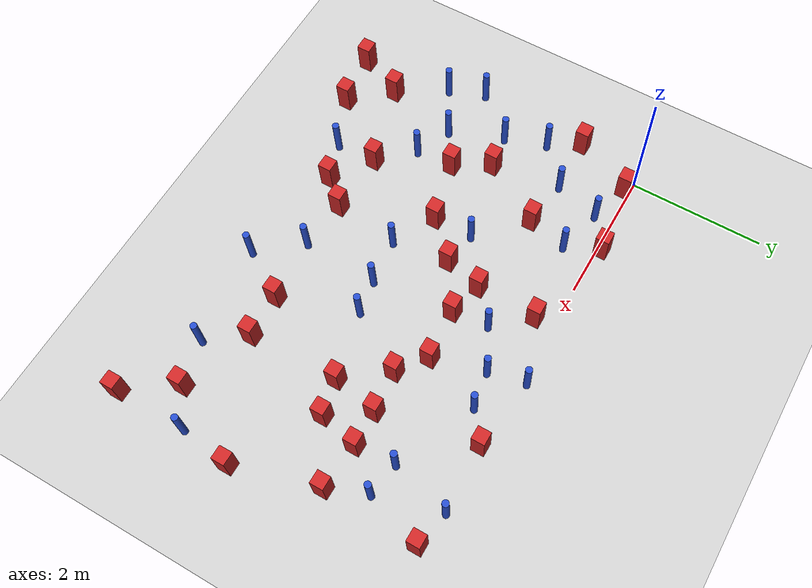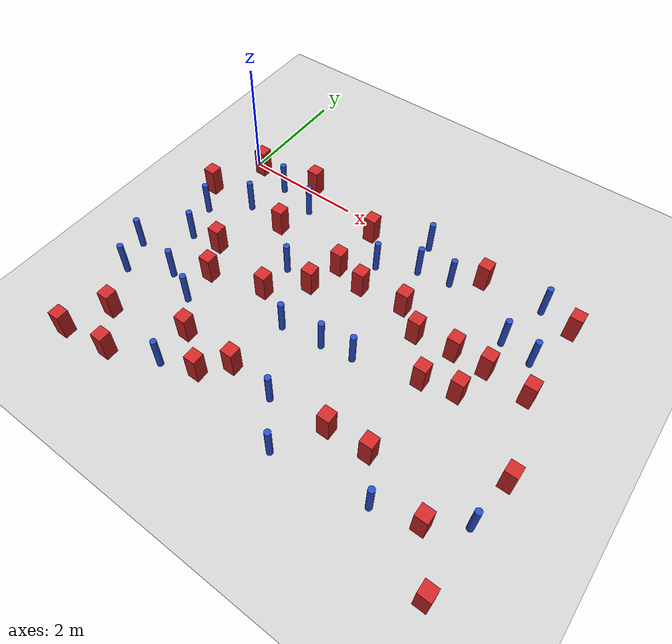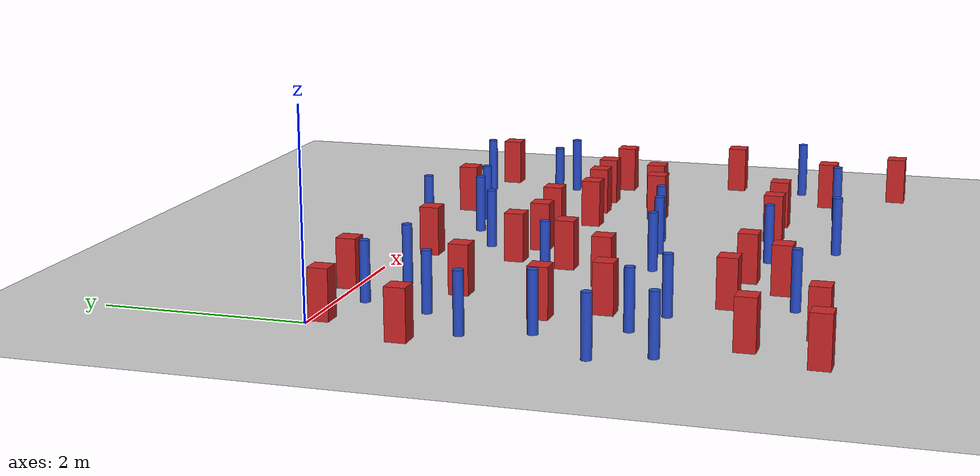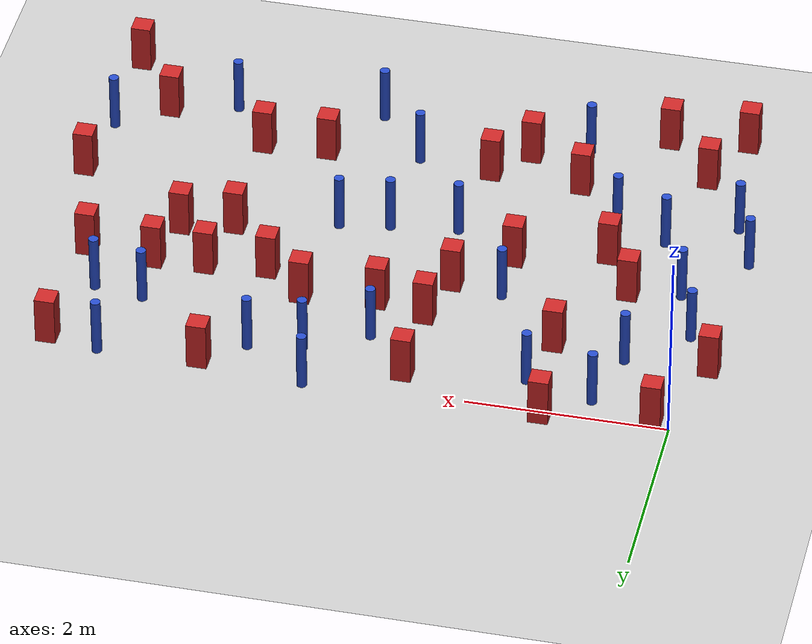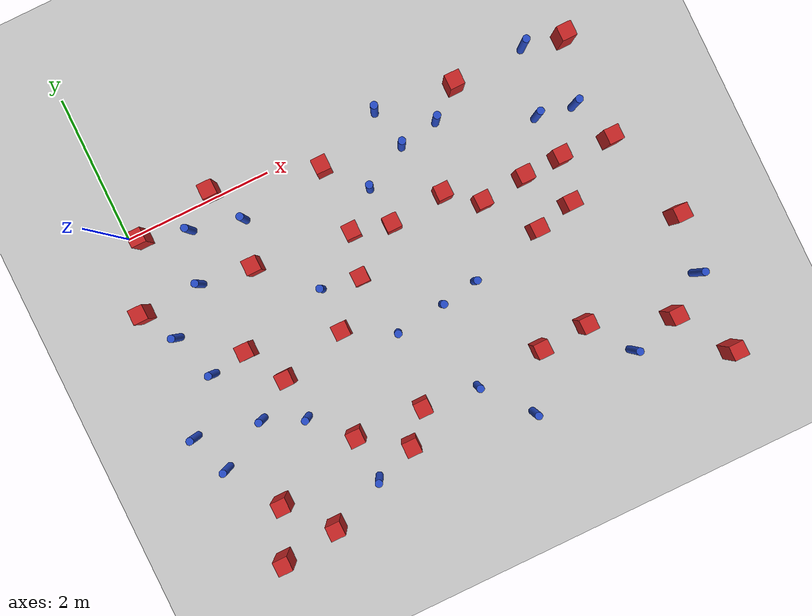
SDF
<sdf version="1.6">
 <world name="default">
  <model name="ground_plane">
   <static>1</static>
   <link name="link">
    <collision name="collision">
     <geometry><plane><normal>0 0 1</normal><size>100 100</size></plane></geometry>
     <surface><friction><ode><mu>100</mu><mu2>50</mu2></ode></friction></surface>
    </collision>
    <visual name="visual">
     <cast_shadows>0</cast_shadows>
     <geometry><plane><normal>0 0 1</normal><size>100 100</size></plane></geometry>
     <material>
      <ambient>1.0 1.0 1.0 1.0</ambient>
      <diffuse>0.8 0.8 0.8 1.0</diffuse>
      <specular>0.01 0.01 0.01 1.000000</specular>
     </material>
    </visual>
   </link>
  </model>
  <model name="NamedLocations">
   <static>true</static>
   <link name="DefaultStart"><pose>8.5 0 0 0 0 3.14</pose></link>
  </model>
  <model name="pole_obstacle4">
   <static>true</static>
   <pose>3.29963674855 -2.52704988164 7.38925637345e-09 -8.47170692798e-08 1.24976764939e-08 -1.74513093025e-07</pose>
   <link name="link">
    <pose>0 0 0.3 0 -0 0</pose>
    <inertial>
     <mass>1</mass>
     <inertia><ixx>0.145833</ixx><ixy>0</ixy><ixz>0</ixz><iyy>0.145833</iyy><iyz>0</iyz><izz>0.125</izz></inertia>
    </inertial>
    <collision name="collision">
     <geometry><cylinder><radius>0.05</radius><length>.6</length></cylinder></geometry>
    </collision>
    <visual name="visual">
     <geometry><cylinder><radius>0.05</radius><length>.6</length></cylinder></geometry>
     <material>
      <script><name>Gazebo/Blue</name><uri>file://media/materials/scripts/gazebo.material</uri></script>
     </material>
    </visual>
   </link>
  </model>
  <model name="square_post_obstacle7">
   <static>true</static>
   <pose>5.32515798996 -2.06593190637 1.91545236811e-07 -7.35059704564e-06 1.12565212e-07 2.39332434364e-05</pose>
   <link name="link">
    <pose>0 0 0.25 0 -0 0</pose>
    <inertial>
     <mass>100</mass>
     <inertia>
      <ixx>0.166667</ixx>
      <ixy>0</ixy>
      <ixz>0</ixz>
      <iyy>0.166667</iyy>
      <iyz>0</iyz>
      <izz>0.166667</izz>
     </inertia>
    </inertial>
    <collision name="collision"><geometry><box><size>.2 .2 .5</size></box></geometry></collision>
    <visual name="visual">
     <geometry><box><size>.2 .2 .5</size></box></geometry>
     <material>
      <script><name>Gazebo/Red</name><uri>file://media/materials/scripts/gazebo.material</uri></script>
     </material>
    </visual>
   </link>
  </model>
  <model name="square_post_obstacle9">
   <static>true</static>
   <pose>3.91278412913 -1.24302501316 1.91545236811e-07 -7.35059704564e-06 1.12565212e-07 2.39332434364e-05</pose>
   <link name="link">
    <pose>0 0 0.25 0 -0 0</pose>
    <inertial>
     <mass>100</mass>
     <inertia>
      <ixx>0.166667</ixx>
      <ixy>0</ixy>
      <ixz>0</ixz>
      <iyy>0.166667</iyy>
      <iyz>0</iyz>
      <izz>0.166667</izz>
     </inertia>
    </inertial>
    <collision name="collision"><geometry><box><size>.2 .2 .5</size></box></geometry></collision>
    <visual name="visual">
     <geometry><box><size>.2 .2 .5</size></box></geometry>
     <material>
      <script><name>Gazebo/Red</name><uri>file://media/materials/scripts/gazebo.material</uri></script>
     </material>
    </visual>
   </link>
  </model>
  <model name="square_post_obstacle11">
   <static>true</static>
   <pose>1.56655398483 -3.56114634323 1.91545236811e-07 -7.35059704564e-06 1.12565212e-07 2.39332434364e-05</pose>
   <link name="link">
    <pose>0 0 0.25 0 -0 0</pose>
    <inertial>
     <mass>100</mass>
     <inertia>
      <ixx>0.166667</ixx>
      <ixy>0</ixy>
      <ixz>0</ixz>
      <iyy>0.166667</iyy>
      <iyz>0</iyz>
      <izz>0.166667</izz>
     </inertia>
    </inertial>
    <collision name="collision"><geometry><box><size>.2 .2 .5</size></box></geometry></collision>
    <visual name="visual">
     <geometry><box><size>.2 .2 .5</size></box></geometry>
     <material>
      <script><name>Gazebo/Red</name><uri>file://media/materials/scripts/gazebo.material</uri></script>
     </material>
    </visual>
   </link>
  </model>
  <model name="square_post_obstacle12">
   <static>true</static>
   <pose>0.781799811374 -1.9727818271 1.91545236811e-07 -7.35059704564e-06 1.12565212e-07 2.39332434364e-05</pose>
   <link name="link">
    <pose>0 0 0.25 0 -0 0</pose>
    <inertial>
     <mass>100</mass>
     <inertia>
      <ixx>0.166667</ixx>
      <ixy>0</ixy>
      <ixz>0</ixz>
      <iyy>0.166667</iyy>
      <iyz>0</iyz>
      <izz>0.166667</izz>
     </inertia>
    </inertial>
    <collision name="collision"><geometry><box><size>.2 .2 .5</size></box></geometry></collision>
    <visual name="visual">
     <geometry><box><size>.2 .2 .5</size></box></geometry>
     <material>
      <script><name>Gazebo/Red</name><uri>file://media/materials/scripts/gazebo.material</uri></script>
     </material>
    </visual>
   </link>
  </model>
  <model name="square_post_obstacle14">
   <static>true</static>
   <pose>6.14993961561 -1.53402861949 1.91545236811e-07 -7.35059704564e-06 1.12565212e-07 2.39332434364e-05</pose>
   <link name="link">
    <pose>0 0 0.25 0 -0 0</pose>
    <inertial>
     <mass>100</mass>
     <inertia>
      <ixx>0.166667</ixx>
      <ixy>0</ixy>
      <ixz>0</ixz>
      <iyy>0.166667</iyy>
      <iyz>0</iyz>
      <izz>0.166667</izz>
     </inertia>
    </inertial>
    <collision name="collision"><geometry><box><size>.2 .2 .5</size></box></geometry></collision>
    <visual name="visual">
     <geometry><box><size>.2 .2 .5</size></box></geometry>
     <material>
      <script><name>Gazebo/Red</name><uri>file://media/materials/scripts/gazebo.material</uri></script>
     </material>
    </visual>
   </link>
  </model>
  <model name="square_post_obstacle20">
   <static>true</static>
   <pose>6.37773901293 -4.66234504108 1.91545236811e-07 -7.35059704564e-06 1.12565212e-07 2.39332434364e-05</pose>
   <link name="link">
    <pose>0 0 0.25 0 -0 0</pose>
    <inertial>
     <mass>100</mass>
     <inertia>
      <ixx>0.166667</ixx>
      <ixy>0</ixy>
      <ixz>0</ixz>
      <iyy>0.166667</iyy>
      <iyz>0</iyz>
      <izz>0.166667</izz>
     </inertia>
    </inertial>
    <collision name="collision"><geometry><box><size>.2 .2 .5</size></box></geometry></collision>
    <visual name="visual">
     <geometry><box><size>.2 .2 .5</size></box></geometry>
     <material>
      <script><name>Gazebo/Red</name><uri>file://media/materials/scripts/gazebo.material</uri></script>
     </material>
    </visual>
   </link>
  </model>
  <model name="square_post_obstacle30">
   <static>true</static>
   <pose>-0.212097342811 -0.975121167639 1.91545236811e-07 -7.35059704564e-06 1.12565212e-07 2.39332434364e-05</pose>
   <link name="link">
    <pose>0 0 0.25 0 -0 0</pose>
    <inertial>
     <mass>100</mass>
     <inertia>
      <ixx>0.166667</ixx>
      <ixy>0</ixy>
      <ixz>0</ixz>
      <iyy>0.166667</iyy>
      <iyz>0</iyz>
      <izz>0.166667</izz>
     </inertia>
    </inertial>
    <collision name="collision"><geometry><box><size>.2 .2 .5</size></box></geometry></collision>
    <visual name="visual">
     <geometry><box><size>.2 .2 .5</size></box></geometry>
     <material>
      <script><name>Gazebo/Red</name><uri>file://media/materials/scripts/gazebo.material</uri></script>
     </material>
    </visual>
   </link>
  </model>
  <model name="pole_obstacle23">
   <static>true</static>
   <pose>5.42729002792 -0.882214914717 7.38925637345e-09 -8.47170692799e-08 1.24976765038e-08 -1.74513093018e-07</pose>
   <link name="link">
    <pose>0 0 0.3 0 -0 0</pose>
    <inertial>
     <mass>1</mass>
     <inertia><ixx>0.145833</ixx><ixy>0</ixy><ixz>0</ixz><iyy>0.145833</iyy><iyz>0</iyz><izz>0.125</izz></inertia>
    </inertial>
    <collision name="collision">
     <geometry><cylinder><radius>0.05</radius><length>.6</length></cylinder></geometry>
    </collision>
    <visual name="visual">
     <geometry><cylinder><radius>0.05</radius><length>.6</length></cylinder></geometry>
     <material>
      <script><name>Gazebo/Blue</name><uri>file://media/materials/scripts/gazebo.material</uri></script>
     </material>
    </visual>
   </link>
  </model>
  <model name="pole_obstacle26">
   <static>true</static>
   <pose>3.71251240073 -0.465332665055 7.38925637345e-09 -8.471706928e-08 1.2497676509e-08 -1.74513093016e-07</pose>
   <link name="link">
    <pose>0 0 0.3 0 -0 0</pose>
    <inertial>
     <mass>1</mass>
     <inertia><ixx>0.145833</ixx><ixy>0</ixy><ixz>0</ixz><iyy>0.145833</iyy><iyz>0</iyz><izz>0.125</izz></inertia>
    </inertial>
    <collision name="collision">
     <geometry><cylinder><radius>0.05</radius><length>.6</length></cylinder></geometry>
    </collision>
    <visual name="visual">
     <geometry><cylinder><radius>0.05</radius><length>.6</length></cylinder></geometry>
     <material>
      <script><name>Gazebo/Blue</name><uri>file://media/materials/scripts/gazebo.material</uri></script>
     </material>
    </visual>
   </link>
  </model>
  <model name="square_post_obstacle37">
   <static>true</static>
   <pose>2.67386604057 -0.272644158331 1.91545236811e-07 -7.35059704564e-06 1.12565212e-07 2.39332434364e-05</pose>
   <link name="link">
    <pose>0 0 0.25 0 -0 0</pose>
    <inertial>
     <mass>100</mass>
     <inertia>
      <ixx>0.166667</ixx>
      <ixy>0</ixy>
      <ixz>0</ixz>
      <iyy>0.166667</iyy>
      <iyz>0</iyz>
      <izz>0.166667</izz>
     </inertia>
    </inertial>
    <collision name="collision"><geometry><box><size>.2 .2 .5</size></box></geometry></collision>
    <visual name="visual">
     <geometry><box><size>.2 .2 .5</size></box></geometry>
     <material>
      <script><name>Gazebo/Red</name><uri>file://media/materials/scripts/gazebo.material</uri></script>
     </material>
    </visual>
   </link>
  </model>
  <model name="pole_obstacle39">
   <static>true</static>
   <pose>3.24939669819 -3.66984766308 7.38925637345e-09 -8.47170692798e-08 1.24976764939e-08 -1.74513093025e-07</pose>
   <link name="link">
    <pose>0 0 0.3 0 -0 0</pose>
    <inertial>
     <mass>1</mass>
     <inertia><ixx>0.145833</ixx><ixy>0</ixy><ixz>0</ixz><iyy>0.145833</iyy><iyz>0</iyz><izz>0.125</izz></inertia>
    </inertial>
    <collision name="collision">
     <geometry><cylinder><radius>0.05</radius><length>.6</length></cylinder></geometry>
    </collision>
    <visual name="visual">
     <geometry><cylinder><radius>0.05</radius><length>.6</length></cylinder></geometry>
     <material>
      <script><name>Gazebo/Blue</name><uri>file://media/materials/scripts/gazebo.material</uri></script>
     </material>
    </visual>
   </link>
  </model>
  <model name="pole_obstacle41">
   <static>true</static>
   <pose>3.59054302921 0.0832238258351 7.38925637345e-09 -8.47170692794e-08 1.24976764492e-08 -1.74513093038e-07</pose>
   <link name="link">
    <pose>0 0 0.3 0 -0 0</pose>
    <inertial>
     <mass>1</mass>
     <inertia><ixx>0.145833</ixx><ixy>0</ixy><ixz>0</ixz><iyy>0.145833</iyy><iyz>0</iyz><izz>0.125</izz></inertia>
    </inertial>
    <collision name="collision">
     <geometry><cylinder><radius>0.05</radius><length>.6</length></cylinder></geometry>
    </collision>
    <visual name="visual">
     <geometry><cylinder><radius>0.05</radius><length>.6</length></cylinder></geometry>
     <material>
      <script><name>Gazebo/Blue</name><uri>file://media/materials/scripts/gazebo.material</uri></script>
     </material>
    </visual>
   </link>
  </model>
  <model name="square_post_obstacle45">
   <static>true</static>
   <pose>5.46341938206 -1.47776737375 1.91545236811e-07 -7.35059704564e-06 1.12565212e-07 2.39332434364e-05</pose>
   <link name="link">
    <pose>0 0 0.25 0 -0 0</pose>
    <inertial>
     <mass>100</mass>
     <inertia>
      <ixx>0.166667</ixx>
      <ixy>0</ixy>
      <ixz>0</ixz>
      <iyy>0.166667</iyy>
      <iyz>0</iyz>
      <izz>0.166667</izz>
     </inertia>
    </inertial>
    <collision name="collision"><geometry><box><size>.2 .2 .5</size></box></geometry></collision>
    <visual name="visual">
     <geometry><box><size>.2 .2 .5</size></box></geometry>
     <material>
      <script><name>Gazebo/Red</name><uri>file://media/materials/scripts/gazebo.material</uri></script>
     </material>
    </visual>
   </link>
  </model>
  <model name="square_post_obstacle48">
   <static>true</static>
   <pose>1.2500412774 0.0679227495436 1.91545236811e-07 -7.35059704564e-06 1.12565212e-07 2.39332434364e-05</pose>
   <link name="link">
    <pose>0 0 0.25 0 -0 0</pose>
    <inertial>
     <mass>100</mass>
     <inertia>
      <ixx>0.166667</ixx>
      <ixy>0</ixy>
      <ixz>0</ixz>
      <iyy>0.166667</iyy>
      <iyz>0</iyz>
      <izz>0.166667</izz>
     </inertia>
    </inertial>
    <collision name="collision"><geometry><box><size>.2 .2 .5</size></box></geometry></collision>
    <visual name="visual">
     <geometry><box><size>.2 .2 .5</size></box></geometry>
     <material>
      <script><name>Gazebo/Red</name><uri>file://media/materials/scripts/gazebo.material</uri></script>
     </material>
    </visual>
   </link>
  </model>
  <model name="square_post_obstacle52">
   <static>true</static>
   <pose>4.64862827451 -0.0467366856954 1.91545236811e-07 -7.35059704564e-06 1.12565212e-07 2.39332434364e-05</pose>
   <link name="link">
    <pose>0 0 0.25 0 -0 0</pose>
    <inertial>
     <mass>100</mass>
     <inertia>
      <ixx>0.166667</ixx>
      <ixy>0</ixy>
      <ixz>0</ixz>
      <iyy>0.166667</iyy>
      <iyz>0</iyz>
      <izz>0.166667</izz>
     </inertia>
    </inertial>
    <collision name="collision"><geometry><box><size>.2 .2 .5</size></box></geometry></collision>
    <visual name="visual">
     <geometry><box><size>.2 .2 .5</size></box></geometry>
     <material>
      <script><name>Gazebo/Red</name><uri>file://media/materials/scripts/gazebo.material</uri></script>
     </material>
    </visual>
   </link>
  </model>
  <model name="square_post_obstacle59">
   <static>true</static>
   <pose>6.49960553927 -2.79618050929 1.91545236811e-07 -7.35059704564e-06 1.12565212e-07 2.39332434364e-05</pose>
   <link name="link">
    <pose>0 0 0.25 0 -0 0</pose>
    <inertial>
     <mass>100</mass>
     <inertia>
      <ixx>0.166667</ixx>
      <ixy>0</ixy>
      <ixz>0</ixz>
      <iyy>0.166667</iyy>
      <iyz>0</iyz>
      <izz>0.166667</izz>
     </inertia>
    </inertial>
    <collision name="collision"><geometry><box><size>.2 .2 .5</size></box></geometry></collision>
    <visual name="visual">
     <geometry><box><size>.2 .2 .5</size></box></geometry>
     <material>
      <script><name>Gazebo/Red</name><uri>file://media/materials/scripts/gazebo.material</uri></script>
     </material>
    </visual>
   </link>
  </model>
  <model name="pole_obstacle62">
   <static>true</static>
   <pose>5.23737648423 -4.11610737897 7.38925637345e-09 -8.47170692796e-08 1.24976764786e-08 -1.74513093032e-07</pose>
   <link name="link">
    <pose>0 0 0.3 0 -0 0</pose>
    <inertial>
     <mass>1</mass>
     <inertia><ixx>0.145833</ixx><ixy>0</ixy><ixz>0</ixz><iyy>0.145833</iyy><iyz>0</iyz><izz>0.125</izz></inertia>
    </inertial>
    <collision name="collision">
     <geometry><cylinder><radius>0.05</radius><length>.6</length></cylinder></geometry>
    </collision>
    <visual name="visual">
     <geometry><cylinder><radius>0.05</radius><length>.6</length></cylinder></geometry>
     <material>
      <script><name>Gazebo/Blue</name><uri>file://media/materials/scripts/gazebo.material</uri></script>
     </material>
    </visual>
   </link>
  </model>
  <model name="pole_obstacle65">
   <static>true</static>
   <pose>3.80226814873 -2.44054660749 7.38925637345e-09 -8.47170692798e-08 1.24976764939e-08 -1.74513093025e-07</pose>
   <link name="link">
    <pose>0 0 0.3 0 -0 0</pose>
    <inertial>
     <mass>1</mass>
     <inertia><ixx>0.145833</ixx><ixy>0</ixy><ixz>0</ixz><iyy>0.145833</iyy><iyz>0</iyz><izz>0.125</izz></inertia>
    </inertial>
    <collision name="collision">
     <geometry><cylinder><radius>0.05</radius><length>.6</length></cylinder></geometry>
    </collision>
    <visual name="visual">
     <geometry><cylinder><radius>0.05</radius><length>.6</length></cylinder></geometry>
     <material>
      <script><name>Gazebo/Blue</name><uri>file://media/materials/scripts/gazebo.material</uri></script>
     </material>
    </visual>
   </link>
  </model>
  <model name="square_post_obstacle74">
   <static>true</static>
   <pose>1.08078639596 -2.50780001364 1.91545236811e-07 -7.35059704564e-06 1.12565212e-07 2.39332434364e-05</pose>
   <link name="link">
    <pose>0 0 0.25 0 -0 0</pose>
    <inertial>
     <mass>100</mass>
     <inertia>
      <ixx>0.166667</ixx>
      <ixy>0</ixy>
      <ixz>0</ixz>
      <iyy>0.166667</iyy>
      <iyz>0</iyz>
      <izz>0.166667</izz>
     </inertia>
    </inertial>
    <collision name="collision"><geometry><box><size>.2 .2 .5</size></box></geometry></collision>
    <visual name="visual">
     <geometry><box><size>.2 .2 .5</size></box></geometry>
     <material>
      <script><name>Gazebo/Red</name><uri>file://media/materials/scripts/gazebo.material</uri></script>
     </material>
    </visual>
   </link>
  </model>
  <model name="pole_obstacle69">
   <static>true</static>
   <pose>0.618697867521 -0.941992755895 7.38925637345e-09 -8.47170692799e-08 1.24976765008e-08 -1.7451309302e-07</pose>
   <link name="link">
    <pose>0 0 0.3 0 -0 0</pose>
    <inertial>
     <mass>1</mass>
     <inertia><ixx>0.145833</ixx><ixy>0</ixy><ixz>0</ixz><iyy>0.145833</iyy><iyz>0</iyz><izz>0.125</izz></inertia>
    </inertial>
    <collision name="collision">
     <geometry><cylinder><radius>0.05</radius><length>.6</length></cylinder></geometry>
    </collision>
    <visual name="visual">
     <geometry><cylinder><radius>0.05</radius><length>.6</length></cylinder></geometry>
     <material>
      <script><name>Gazebo/Blue</name><uri>file://media/materials/scripts/gazebo.material</uri></script>
     </material>
    </visual>
   </link>
  </model>
  <model name="pole_obstacle70">
   <static>true</static>
   <pose>0.579045994382 -2.84928705794 7.38925637345e-09 -8.47170692799e-08 1.2497676509e-08 -1.74513093016e-07</pose>
   <link name="link">
    <pose>0 0 0.3 0 -0 0</pose>
    <inertial>
     <mass>1</mass>
     <inertia><ixx>0.145833</ixx><ixy>0</ixy><ixz>0</ixz><iyy>0.145833</iyy><iyz>0</iyz><izz>0.125</izz></inertia>
    </inertial>
    <collision name="collision">
     <geometry><cylinder><radius>0.05</radius><length>.6</length></cylinder></geometry>
    </collision>
    <visual name="visual">
     <geometry><cylinder><radius>0.05</radius><length>.6</length></cylinder></geometry>
     <material>
      <script><name>Gazebo/Blue</name><uri>file://media/materials/scripts/gazebo.material</uri></script>
     </material>
    </visual>
   </link>
  </model>
  <model name="square_post_obstacle82">
   <static>true</static>
   <pose>0.343470365205 -3.9345903441 1.91545236811e-07 -7.35059704564e-06 1.12565212e-07 2.39332434364e-05</pose>
   <link name="link">
    <pose>0 0 0.25 0 -0 0</pose>
    <inertial>
     <mass>100</mass>
     <inertia>
      <ixx>0.166667</ixx>
      <ixy>0</ixy>
      <ixz>0</ixz>
      <iyy>0.166667</iyy>
      <iyz>0</iyz>
      <izz>0.166667</izz>
     </inertia>
    </inertial>
    <collision name="collision"><geometry><box><size>.2 .2 .5</size></box></geometry></collision>
    <visual name="visual">
     <geometry><box><size>.2 .2 .5</size></box></geometry>
     <material>
      <script><name>Gazebo/Red</name><uri>file://media/materials/scripts/gazebo.material</uri></script>
     </material>
    </visual>
   </link>
  </model>
  <model name="pole_obstacle100">
   <static>true</static>
   <pose>5.65591001705 0.00275264642492 7.38925637345e-09 -8.471706928e-08 1.24976765152e-08 -1.74513093013e-07</pose>
   <link name="link">
    <pose>0 0 0.3 0 -0 0</pose>
    <inertial>
     <mass>1</mass>
     <inertia><ixx>0.145833</ixx><ixy>0</ixy><ixz>0</ixz><iyy>0.145833</iyy><iyz>0</iyz><izz>0.125</izz></inertia>
    </inertial>
    <collision name="collision">
     <geometry><cylinder><radius>0.05</radius><length>.6</length></cylinder></geometry>
    </collision>
    <visual name="visual">
     <geometry><cylinder><radius>0.05</radius><length>.6</length></cylinder></geometry>
     <material>
      <script><name>Gazebo/Blue</name><uri>file://media/materials/scripts/gazebo.material</uri></script>
     </material>
    </visual>
   </link>
  </model>
  <model name="square_post_obstacle94">
   <static>true</static>
   <pose>4.83288081223 -3.54831911603 1.91545236811e-07 -7.35059704564e-06 1.12565212e-07 2.39332434364e-05</pose>
   <link name="link">
    <pose>0 0 0.25 0 -0 0</pose>
    <inertial>
     <mass>100</mass>
     <inertia>
      <ixx>0.166667</ixx>
      <ixy>0</ixy>
      <ixz>0</ixz>
      <iyy>0.166667</iyy>
      <iyz>0</iyz>
      <izz>0.166667</izz>
     </inertia>
    </inertial>
    <collision name="collision"><geometry><box><size>.2 .2 .5</size></box></geometry></collision>
    <visual name="visual">
     <geometry><box><size>.2 .2 .5</size></box></geometry>
     <material>
      <script><name>Gazebo/Red</name><uri>file://media/materials/scripts/gazebo.material</uri></script>
     </material>
    </visual>
   </link>
  </model>
  <model name="square_post_obstacle95">
   <static>true</static>
   <pose>6.17915060562 -0.108611815512 1.91545236811e-07 -7.35059704564e-06 1.12565212e-07 2.39332434364e-05</pose>
   <link name="link">
    <pose>0 0 0.25 0 -0 0</pose>
    <inertial>
     <mass>100</mass>
     <inertia>
      <ixx>0.166667</ixx>
      <ixy>0</ixy>
      <ixz>0</ixz>
      <iyy>0.166667</iyy>
      <iyz>0</iyz>
      <izz>0.166667</izz>
     </inertia>
    </inertial>
    <collision name="collision"><geometry><box><size>.2 .2 .5</size></box></geometry></collision>
    <visual name="visual">
     <geometry><box><size>.2 .2 .5</size></box></geometry>
     <material>
      <script><name>Gazebo/Red</name><uri>file://media/materials/scripts/gazebo.material</uri></script>
     </material>
    </visual>
   </link>
  </model>
  <model name="pole_obstacle113">
   <static>true</static>
   <pose>5.92642517865 -0.958715913393 7.38925637345e-09 -8.47170692799e-08 1.24976765054e-08 -1.74513093018e-07</pose>
   <link name="link">
    <pose>0 0 0.3 0 -0 0</pose>
    <inertial>
     <mass>1</mass>
     <inertia><ixx>0.145833</ixx><ixy>0</ixy><ixz>0</ixz><iyy>0.145833</iyy><iyz>0</iyz><izz>0.125</izz></inertia>
    </inertial>
    <collision name="collision">
     <geometry><cylinder><radius>0.05</radius><length>.6</length></cylinder></geometry>
    </collision>
    <visual name="visual">
     <geometry><cylinder><radius>0.05</radius><length>.6</length></cylinder></geometry>
     <material>
      <script><name>Gazebo/Blue</name><uri>file://media/materials/scripts/gazebo.material</uri></script>
     </material>
    </visual>
   </link>
  </model>
  <model name="square_post_obstacle104">
   <static>true</static>
   <pose>0.185371386443 -0.0892287103175 1.91545236811e-07 -7.35059704564e-06 1.12565212e-07 2.39332434364e-05</pose>
   <link name="link">
    <pose>0 0 0.25 0 -0 0</pose>
    <inertial>
     <mass>100</mass>
     <inertia>
      <ixx>0.166667</ixx>
      <ixy>0</ixy>
      <ixz>0</ixz>
      <iyy>0.166667</iyy>
      <iyz>0</iyz>
      <izz>0.166667</izz>
     </inertia>
    </inertial>
    <collision name="collision"><geometry><box><size>.2 .2 .5</size></box></geometry></collision>
    <visual name="visual">
     <geometry><box><size>.2 .2 .5</size></box></geometry>
     <material>
      <script><name>Gazebo/Red</name><uri>file://media/materials/scripts/gazebo.material</uri></script>
     </material>
    </visual>
   </link>
  </model>
  <model name="square_post_obstacle107">
   <static>true</static>
   <pose>0.0484123641351 -4.61002444014 1.91545236811e-07 -7.35059704564e-06 1.12565212e-07 2.39332434364e-05</pose>
   <link name="link">
    <pose>0 0 0.25 0 -0 0</pose>
    <inertial>
     <mass>100</mass>
     <inertia>
      <ixx>0.166667</ixx>
      <ixy>0</ixy>
      <ixz>0</ixz>
      <iyy>0.166667</iyy>
      <iyz>0</iyz>
      <izz>0.166667</izz>
     </inertia>
    </inertial>
    <collision name="collision"><geometry><box><size>.2 .2 .5</size></box></geometry></collision>
    <visual name="visual">
     <geometry><box><size>.2 .2 .5</size></box></geometry>
     <material>
      <script><name>Gazebo/Red</name><uri>file://media/materials/scripts/gazebo.material</uri></script>
     </material>
    </visual>
   </link>
  </model>
  <model name="pole_obstacle121">
   <static>true</static>
   <pose>4.24382040964 -0.370732630138 7.38925637345e-09 -8.47170692798e-08 1.24976765003e-08 -1.7451309302e-07</pose>
   <link name="link">
    <pose>0 0 0.3 0 -0 0</pose>
    <inertial>
     <mass>1</mass>
     <inertia><ixx>0.145833</ixx><ixy>0</ixy><ixz>0</ixz><iyy>0.145833</iyy><iyz>0</iyz><izz>0.125</izz></inertia>
    </inertial>
    <collision name="collision">
     <geometry><cylinder><radius>0.05</radius><length>.6</length></cylinder></geometry>
    </collision>
    <visual name="visual">
     <geometry><cylinder><radius>0.05</radius><length>.6</length></cylinder></geometry>
     <material>
      <script><name>Gazebo/Blue</name><uri>file://media/materials/scripts/gazebo.material</uri></script>
     </material>
    </visual>
   </link>
  </model>
  <model name="pole_obstacle124">
   <static>true</static>
   <pose>1.48582779091 -0.436796677172 7.38925637345e-09 -8.47170692799e-08 1.24976765065e-08 -1.74513093017e-07</pose>
   <link name="link">
    <pose>0 0 0.3 0 -0 0</pose>
    <inertial>
     <mass>1</mass>
     <inertia><ixx>0.145833</ixx><ixy>0</ixy><ixz>0</ixz><iyy>0.145833</iyy><iyz>0</iyz><izz>0.125</izz></inertia>
    </inertial>
    <collision name="collision">
     <geometry><cylinder><radius>0.05</radius><length>.6</length></cylinder></geometry>
    </collision>
    <visual name="visual">
     <geometry><cylinder><radius>0.05</radius><length>.6</length></cylinder></geometry>
     <material>
      <script><name>Gazebo/Blue</name><uri>file://media/materials/scripts/gazebo.material</uri></script>
     </material>
    </visual>
   </link>
  </model>
  <model name="pole_obstacle128">
   <static>true</static>
   <pose>0.0552838956196 -1.43466349698 7.38925637345e-09 -8.47170692798e-08 1.24976765001e-08 -1.74513093021e-07</pose>
   <link name="link">
    <pose>0 0 0.3 0 -0 0</pose>
    <inertial>
     <mass>1</mass>
     <inertia><ixx>0.145833</ixx><ixy>0</ixy><ixz>0</ixz><iyy>0.145833</iyy><iyz>0</iyz><izz>0.125</izz></inertia>
    </inertial>
    <collision name="collision">
     <geometry><cylinder><radius>0.05</radius><length>.6</length></cylinder></geometry>
    </collision>
    <visual name="visual">
     <geometry><cylinder><radius>0.05</radius><length>.6</length></cylinder></geometry>
     <material>
      <script><name>Gazebo/Blue</name><uri>file://media/materials/scripts/gazebo.material</uri></script>
     </material>
    </visual>
   </link>
  </model>
  <model name="pole_obstacle134">
   <static>true</static>
   <pose>3.10687038423 -0.780850217126 7.38925637345e-09 -8.471706928e-08 1.24976765177e-08 -1.74513093012e-07</pose>
   <link name="link">
    <pose>0 0 0.3 0 -0 0</pose>
    <inertial>
     <mass>1</mass>
     <inertia><ixx>0.145833</ixx><ixy>0</ixy><ixz>0</ixz><iyy>0.145833</iyy><iyz>0</iyz><izz>0.125</izz></inertia>
    </inertial>
    <collision name="collision">
     <geometry><cylinder><radius>0.05</radius><length>.6</length></cylinder></geometry>
    </collision>
    <visual name="visual">
     <geometry><cylinder><radius>0.05</radius><length>.6</length></cylinder></geometry>
     <material>
      <script><name>Gazebo/Blue</name><uri>file://media/materials/scripts/gazebo.material</uri></script>
     </material>
    </visual>
   </link>
  </model>
  <model name="square_post_obstacle118">
   <static>true</static>
   <pose>2.65506309591 -1.18407969353 1.91545236811e-07 -7.35059704564e-06 1.12565212e-07 2.39332434364e-05</pose>
   <link name="link">
    <pose>0 0 0.25 0 -0 0</pose>
    <inertial>
     <mass>100</mass>
     <inertia>
      <ixx>0.166667</ixx>
      <ixy>0</ixy>
      <ixz>0</ixz>
      <iyy>0.166667</iyy>
      <iyz>0</iyz>
      <izz>0.166667</izz>
     </inertia>
    </inertial>
    <collision name="collision"><geometry><box><size>.2 .2 .5</size></box></geometry></collision>
    <visual name="visual">
     <geometry><box><size>.2 .2 .5</size></box></geometry>
     <material>
      <script><name>Gazebo/Red</name><uri>file://media/materials/scripts/gazebo.material</uri></script>
     </material>
    </visual>
   </link>
  </model>
  <model name="pole_obstacle138">
   <static>true</static>
   <pose>-0.0952575684594 -3.22354801672 7.38925637345e-09 -8.471706928e-08 1.24976765098e-08 -1.74513093016e-07</pose>
   <link name="link">
    <pose>0 0 0.3 0 -0 0</pose>
    <inertial>
     <mass>1</mass>
     <inertia><ixx>0.145833</ixx><ixy>0</ixy><ixz>0</ixz><iyy>0.145833</iyy><iyz>0</iyz><izz>0.125</izz></inertia>
    </inertial>
    <collision name="collision">
     <geometry><cylinder><radius>0.05</radius><length>.6</length></cylinder></geometry>
    </collision>
    <visual name="visual">
     <geometry><cylinder><radius>0.05</radius><length>.6</length></cylinder></geometry>
     <material>
      <script><name>Gazebo/Blue</name><uri>file://media/materials/scripts/gazebo.material</uri></script>
     </material>
    </visual>
   </link>
  </model>
  <model name="square_post_obstacle124">
   <static>true</static>
   <pose>4.17736739027 -3.58245816356 1.91545236811e-07 -7.35059704564e-06 1.12565212e-07 2.39332434364e-05</pose>
   <link name="link">
    <pose>0 0 0.25 0 -0 0</pose>
    <inertial>
     <mass>100</mass>
     <inertia>
      <ixx>0.166667</ixx>
      <ixy>0</ixy>
      <ixz>0</ixz>
      <iyy>0.166667</iyy>
      <iyz>0</iyz>
      <izz>0.166667</izz>
     </inertia>
    </inertial>
    <collision name="collision"><geometry><box><size>.2 .2 .5</size></box></geometry></collision>
    <visual name="visual">
     <geometry><box><size>.2 .2 .5</size></box></geometry>
     <material>
      <script><name>Gazebo/Red</name><uri>file://media/materials/scripts/gazebo.material</uri></script>
     </material>
    </visual>
   </link>
  </model>
  <model name="square_post_obstacle125">
   <static>true</static>
   <pose>2.49642372731 -3.59328297272 1.91545236811e-07 -7.35059704564e-06 1.12565212e-07 2.39332434364e-05</pose>
   <link name="link">
    <pose>0 0 0.25 0 -0 0</pose>
    <inertial>
     <mass>100</mass>
     <inertia>
      <ixx>0.166667</ixx>
      <ixy>0</ixy>
      <ixz>0</ixz>
      <iyy>0.166667</iyy>
      <iyz>0</iyz>
      <izz>0.166667</izz>
     </inertia>
    </inertial>
    <collision name="collision"><geometry><box><size>.2 .2 .5</size></box></geometry></collision>
    <visual name="visual">
     <geometry><box><size>.2 .2 .5</size></box></geometry>
     <material>
      <script><name>Gazebo/Red</name><uri>file://media/materials/scripts/gazebo.material</uri></script>
     </material>
    </visual>
   </link>
  </model>
  <model name="square_post_obstacle127">
   <static>true</static>
   <pose>4.93853055319 -1.49859823892 1.91545236811e-07 -7.35059704564e-06 1.12565212e-07 2.39332434364e-05</pose>
   <link name="link">
    <pose>0 0 0.25 0 -0 0</pose>
    <inertial>
     <mass>100</mass>
     <inertia>
      <ixx>0.166667</ixx>
      <ixy>0</ixy>
      <ixz>0</ixz>
      <iyy>0.166667</iyy>
      <iyz>0</iyz>
      <izz>0.166667</izz>
     </inertia>
    </inertial>
    <collision name="collision"><geometry><box><size>.2 .2 .5</size></box></geometry></collision>
    <visual name="visual">
     <geometry><box><size>.2 .2 .5</size></box></geometry>
     <material>
      <script><name>Gazebo/Red</name><uri>file://media/materials/scripts/gazebo.material</uri></script>
     </material>
    </visual>
   </link>
  </model>
  <model name="square_post_obstacle134">
   <static>true</static>
   <pose>0.834172804149 -4.49978844454 1.91545236811e-07 -7.35059704564e-06 1.12565212e-07 2.39332434364e-05</pose>
   <link name="link">
    <pose>0 0 0.25 0 -0 0</pose>
    <inertial>
     <mass>100</mass>
     <inertia>
      <ixx>0.166667</ixx>
      <ixy>0</ixy>
      <ixz>0</ixz>
      <iyy>0.166667</iyy>
      <iyz>0</iyz>
      <izz>0.166667</izz>
     </inertia>
    </inertial>
    <collision name="collision"><geometry><box><size>.2 .2 .5</size></box></geometry></collision>
    <visual name="visual">
     <geometry><box><size>.2 .2 .5</size></box></geometry>
     <material>
      <script><name>Gazebo/Red</name><uri>file://media/materials/scripts/gazebo.material</uri></script>
     </material>
    </visual>
   </link>
  </model>
  <model name="square_post_obstacle158">
   <static>true</static>
   <pose>2.50392895493 -1.75443569559 1.91545236811e-07 -7.35059704564e-06 1.12565212e-07 2.39332434364e-05</pose>
   <link name="link">
    <pose>0 0 0.25 0 -0 0</pose>
    <inertial>
     <mass>100</mass>
     <inertia>
      <ixx>0.166667</ixx>
      <ixy>0</ixy>
      <ixz>0</ixz>
      <iyy>0.166667</iyy>
      <iyz>0</iyz>
      <izz>0.166667</izz>
     </inertia>
    </inertial>
    <collision name="collision"><geometry><box><size>.2 .2 .5</size></box></geometry></collision>
    <visual name="visual">
     <geometry><box><size>.2 .2 .5</size></box></geometry>
     <material>
      <script><name>Gazebo/Red</name><uri>file://media/materials/scripts/gazebo.material</uri></script>
     </material>
    </visual>
   </link>
  </model>
  <model name="pole_obstacle170">
   <static>true</static>
   <pose>3.75457571768 -4.28983690638 7.38925637345e-09 -8.47170692798e-08 1.24976765033e-08 -1.74513093019e-07</pose>
   <link name="link">
    <pose>0 0 0.3 0 -0 0</pose>
    <inertial>
     <mass>1</mass>
     <inertia><ixx>0.145833</ixx><ixy>0</ixy><ixz>0</ixz><iyy>0.145833</iyy><iyz>0</iyz><izz>0.125</izz></inertia>
    </inertial>
    <collision name="collision">
     <geometry><cylinder><radius>0.05</radius><length>.6</length></cylinder></geometry>
    </collision>
    <visual name="visual">
     <geometry><cylinder><radius>0.05</radius><length>.6</length></cylinder></geometry>
     <material>
      <script><name>Gazebo/Blue</name><uri>file://media/materials/scripts/gazebo.material</uri></script>
     </material>
    </visual>
   </link>
  </model>
  <model name="square_post_obstacle161">
   <static>true</static>
   <pose>3.16077113188 -1.31396740945 1.91545236811e-07 -7.35059704564e-06 1.12565212e-07 2.39332434364e-05</pose>
   <link name="link">
    <pose>0 0 0.25 0 -0 0</pose>
    <inertial>
     <mass>100</mass>
     <inertia>
      <ixx>0.166667</ixx>
      <ixy>0</ixy>
      <ixz>0</ixz>
      <iyy>0.166667</iyy>
      <iyz>0</iyz>
      <izz>0.166667</izz>
     </inertia>
    </inertial>
    <collision name="collision"><geometry><box><size>.2 .2 .5</size></box></geometry></collision>
    <visual name="visual">
     <geometry><box><size>.2 .2 .5</size></box></geometry>
     <material>
      <script><name>Gazebo/Red</name><uri>file://media/materials/scripts/gazebo.material</uri></script>
     </material>
    </visual>
   </link>
  </model>
  <model name="pole_obstacle172">
   <static>true</static>
   <pose>-0.292037830757 -2.68397612443 7.38925637345e-09 -8.471706928e-08 1.24976765139e-08 -1.74513093014e-07</pose>
   <link name="link">
    <pose>0 0 0.3 0 -0 0</pose>
    <inertial>
     <mass>1</mass>
     <inertia><ixx>0.145833</ixx><ixy>0</ixy><ixz>0</ixz><iyy>0.145833</iyy><iyz>0</iyz><izz>0.125</izz></inertia>
    </inertial>
    <collision name="collision">
     <geometry><cylinder><radius>0.05</radius><length>.6</length></cylinder></geometry>
    </collision>
    <visual name="visual">
     <geometry><cylinder><radius>0.05</radius><length>.6</length></cylinder></geometry>
     <material>
      <script><name>Gazebo/Blue</name><uri>file://media/materials/scripts/gazebo.material</uri></script>
     </material>
    </visual>
   </link>
  </model>
  <model name="pole_obstacle177">
   <static>true</static>
   <pose>1.98907459224 -1.67622153561 7.38925637345e-09 -8.47170692795e-08 1.24976764702e-08 -1.74513093038e-07</pose>
   <link name="link">
    <pose>0 0 0.3 0 -0 0</pose>
    <inertial>
     <mass>1</mass>
     <inertia><ixx>0.145833</ixx><ixy>0</ixy><ixz>0</ixz><iyy>0.145833</iyy><iyz>0</iyz><izz>0.125</izz></inertia>
    </inertial>
    <collision name="collision">
     <geometry><cylinder><radius>0.05</radius><length>.6</length></cylinder></geometry>
    </collision>
    <visual name="visual">
     <geometry><cylinder><radius>0.05</radius><length>.6</length></cylinder></geometry>
     <material>
      <script><name>Gazebo/Blue</name><uri>file://media/materials/scripts/gazebo.material</uri></script>
     </material>
    </visual>
   </link>
  </model>
  <model name="pole_obstacle179">
   <static>true</static>
   <pose>1.59863876094 -4.17934300113 7.38925637345e-09 -8.47170692799e-08 1.24976765033e-08 -1.74513093018e-07</pose>
   <link name="link">
    <pose>0 0 0.3 0 -0 0</pose>
    <inertial>
     <mass>1</mass>
     <inertia><ixx>0.145833</ixx><ixy>0</ixy><ixz>0</ixz><iyy>0.145833</iyy><iyz>0</iyz><izz>0.125</izz></inertia>
    </inertial>
    <collision name="collision">
     <geometry><cylinder><radius>0.05</radius><length>.6</length></cylinder></geometry>
    </collision>
    <visual name="visual">
     <geometry><cylinder><radius>0.05</radius><length>.6</length></cylinder></geometry>
     <material>
      <script><name>Gazebo/Blue</name><uri>file://media/materials/scripts/gazebo.material</uri></script>
     </material>
    </visual>
   </link>
  </model>
  <model name="pole_obstacle184">
   <static>true</static>
   <pose>0.804149431561 -0.264384678854 7.38925637345e-09 -8.47170692799e-08 1.24976765051e-08 -1.74513093017e-07</pose>
   <link name="link">
    <pose>0 0 0.3 0 -0 0</pose>
    <inertial>
     <mass>1</mass>
     <inertia><ixx>0.145833</ixx><ixy>0</ixy><ixz>0</ixz><iyy>0.145833</iyy><iyz>0</iyz><izz>0.125</izz></inertia>
    </inertial>
    <collision name="collision">
     <geometry><cylinder><radius>0.05</radius><length>.6</length></cylinder></geometry>
    </collision>
    <visual name="visual">
     <geometry><cylinder><radius>0.05</radius><length>.6</length></cylinder></geometry>
     <material>
      <script><name>Gazebo/Blue</name><uri>file://media/materials/scripts/gazebo.material</uri></script>
     </material>
    </visual>
   </link>
  </model>
  <model name="square_post_obstacle173">
   <static>true</static>
   <pose>2.1553959546 -3.97712884622 1.91545236811e-07 -7.35059704564e-06 1.12565212e-07 2.39332434364e-05</pose>
   <link name="link">
    <pose>0 0 0.25 0 -0 0</pose>
    <inertial>
     <mass>100</mass>
     <inertia>
      <ixx>0.166667</ixx>
      <ixy>0</ixy>
      <ixz>0</ixz>
      <iyy>0.166667</iyy>
      <iyz>0</iyz>
      <izz>0.166667</izz>
     </inertia>
    </inertial>
    <collision name="collision"><geometry><box><size>.2 .2 .5</size></box></geometry></collision>
    <visual name="visual">
     <geometry><box><size>.2 .2 .5</size></box></geometry>
     <material>
      <script><name>Gazebo/Red</name><uri>file://media/materials/scripts/gazebo.material</uri></script>
     </material>
    </visual>
   </link>
  </model>
  <model name="square_post_obstacle189">
   <static>true</static>
   <pose>1.98884635305 -2.26401123301 1.91545236811e-07 -7.35059704564e-06 1.12565212e-07 2.39332434364e-05</pose>
   <link name="link">
    <pose>0 0 0.25 0 -0 0</pose>
    <inertial>
     <mass>100</mass>
     <inertia>
      <ixx>0.166667</ixx>
      <ixy>0</ixy>
      <ixz>0</ixz>
      <iyy>0.166667</iyy>
      <iyz>0</iyz>
      <izz>0.166667</izz>
     </inertia>
    </inertial>
    <collision name="collision"><geometry><box><size>.2 .2 .5</size></box></geometry></collision>
    <visual name="visual">
     <geometry><box><size>.2 .2 .5</size></box></geometry>
     <material>
      <script><name>Gazebo/Red</name><uri>file://media/materials/scripts/gazebo.material</uri></script>
     </material>
    </visual>
   </link>
  </model>
  <model name="square_post_obstacle195">
   <static>true</static>
   <pose>4.80205829839 -2.18722737191 1.91545236811e-07 -7.35059704564e-06 1.12565212e-07 2.39332434364e-05</pose>
   <link name="link">
    <pose>0 0 0.25 0 -0 0</pose>
    <inertial>
     <mass>100</mass>
     <inertia>
      <ixx>0.166667</ixx>
      <ixy>0</ixy>
      <ixz>0</ixz>
      <iyy>0.166667</iyy>
      <iyz>0</iyz>
      <izz>0.166667</izz>
     </inertia>
    </inertial>
    <collision name="collision"><geometry><box><size>.2 .2 .5</size></box></geometry></collision>
    <visual name="visual">
     <geometry><box><size>.2 .2 .5</size></box></geometry>
     <material>
      <script><name>Gazebo/Red</name><uri>file://media/materials/scripts/gazebo.material</uri></script>
     </material>
    </visual>
   </link>
  </model>
  <model name="square_post_obstacle197">
   <static>true</static>
   <pose>4.32181655408 -1.56188359461 1.91545236811e-07 -7.35059704564e-06 1.12565212e-07 2.39332434364e-05</pose>
   <link name="link">
    <pose>0 0 0.25 0 -0 0</pose>
    <inertial>
     <mass>100</mass>
     <inertia>
      <ixx>0.166667</ixx>
      <ixy>0</ixy>
      <ixz>0</ixz>
      <iyy>0.166667</iyy>
      <iyz>0</iyz>
      <izz>0.166667</izz>
     </inertia>
    </inertial>
    <collision name="collision"><geometry><box><size>.2 .2 .5</size></box></geometry></collision>
    <visual name="visual">
     <geometry><box><size>.2 .2 .5</size></box></geometry>
     <material>
      <script><name>Gazebo/Red</name><uri>file://media/materials/scripts/gazebo.material</uri></script>
     </material>
    </visual>
   </link>
  </model>
  <model name="square_post_obstacle202">
   <static>true</static>
   <pose>1.33467721975 -1.03459115194 1.91545236811e-07 -7.35059704564e-06 1.12565212e-07 2.39332434364e-05</pose>
   <link name="link">
    <pose>0 0 0.25 0 -0 0</pose>
    <inertial>
     <mass>100</mass>
     <inertia>
      <ixx>0.166667</ixx>
      <ixy>0</ixy>
      <ixz>0</ixz>
      <iyy>0.166667</iyy>
      <iyz>0</iyz>
      <izz>0.166667</izz>
     </inertia>
    </inertial>
    <collision name="collision"><geometry><box><size>.2 .2 .5</size></box></geometry></collision>
    <visual name="visual">
     <geometry><box><size>.2 .2 .5</size></box></geometry>
     <material>
      <script><name>Gazebo/Red</name><uri>file://media/materials/scripts/gazebo.material</uri></script>
     </material>
    </visual>
   </link>
  </model>
  <model name="pole_obstacle198">
   <static>true</static>
   <pose>0.266794887222 -2.05328224699 7.38925637345e-09 -8.471706928e-08 1.24976765078e-08 -1.74513093017e-07</pose>
   <link name="link">
    <pose>0 0 0.3 0 -0 0</pose>
    <inertial>
     <mass>1</mass>
     <inertia><ixx>0.145833</ixx><ixy>0</ixy><ixz>0</ixz><iyy>0.145833</iyy><iyz>0</iyz><izz>0.125</izz></inertia>
    </inertial>
    <collision name="collision">
     <geometry><cylinder><radius>0.05</radius><length>.6</length></cylinder></geometry>
    </collision>
    <visual name="visual">
     <geometry><cylinder><radius>0.05</radius><length>.6</length></cylinder></geometry>
     <material>
      <script><name>Gazebo/Blue</name><uri>file://media/materials/scripts/gazebo.material</uri></script>
     </material>
    </visual>
   </link>
  </model>
  <model name="pole_obstacle201">
   <static>true</static>
   <pose>2.62550014071 -2.60920319578 7.38925637345e-09 -8.47170692798e-08 1.24976764939e-08 -1.74513093025e-07</pose>
   <link name="link">
    <pose>0 0 0.3 0 -0 0</pose>
    <inertial>
     <mass>1</mass>
     <inertia><ixx>0.145833</ixx><ixy>0</ixy><ixz>0</ixz><iyy>0.145833</iyy><iyz>0</iyz><izz>0.125</izz></inertia>
    </inertial>
    <collision name="collision">
     <geometry><cylinder><radius>0.05</radius><length>.6</length></cylinder></geometry>
    </collision>
    <visual name="visual">
     <geometry><cylinder><radius>0.05</radius><length>.6</length></cylinder></geometry>
     <material>
      <script><name>Gazebo/Blue</name><uri>file://media/materials/scripts/gazebo.material</uri></script>
     </material>
    </visual>
   </link>
  </model>
  <model name="pole_obstacle212">
   <static>true</static>
   <pose>6.3997569912 -3.57686787854 7.38925637345e-09 -8.47170692798e-08 1.24976764937e-08 -1.74513093023e-07</pose>
   <link name="link">
    <pose>0 0 0.3 0 -0 0</pose>
    <inertial>
     <mass>1</mass>
     <inertia><ixx>0.145833</ixx><ixy>0</ixy><ixz>0</ixz><iyy>0.145833</iyy><iyz>0</iyz><izz>0.125</izz></inertia>
    </inertial>
    <collision name="collision">
     <geometry><cylinder><radius>0.05</radius><length>.6</length></cylinder></geometry>
    </collision>
    <visual name="visual">
     <geometry><cylinder><radius>0.05</radius><length>.6</length></cylinder></geometry>
     <material>
      <script><name>Gazebo/Blue</name><uri>file://media/materials/scripts/gazebo.material</uri></script>
     </material>
    </visual>
   </link>
  </model>
  <model name="pole_obstacle213">
   <static>true</static>
   <pose>1.11084791228 -3.08115247935 7.38925637345e-09 -8.47170692799e-08 1.24976765053e-08 -1.74513093017e-07</pose>
   <link name="link">
    <pose>0 0 0.3 0 -0 0</pose>
    <inertial>
     <mass>1</mass>
     <inertia><ixx>0.145833</ixx><ixy>0</ixy><ixz>0</ixz><iyy>0.145833</iyy><iyz>0</iyz><izz>0.125</izz></inertia>
    </inertial>
    <collision name="collision">
     <geometry><cylinder><radius>0.05</radius><length>.6</length></cylinder></geometry>
    </collision>
    <visual name="visual">
     <geometry><cylinder><radius>0.05</radius><length>.6</length></cylinder></geometry>
     <material>
      <script><name>Gazebo/Blue</name><uri>file://media/materials/scripts/gazebo.material</uri></script>
     </material>
    </visual>
   </link>
  </model>
  <model name="square_post_obstacle208">
   <static>true</static>
   <pose>5.89545352551 -3.93951305813 1.91545236811e-07 -7.35059704564e-06 1.12565212e-07 2.39332434364e-05</pose>
   <link name="link">
    <pose>0 0 0.25 0 -0 0</pose>
    <inertial>
     <mass>100</mass>
     <inertia>
      <ixx>0.166667</ixx>
      <ixy>0</ixy>
      <ixz>0</ixz>
      <iyy>0.166667</iyy>
      <iyz>0</iyz>
      <izz>0.166667</izz>
     </inertia>
    </inertial>
    <collision name="collision"><geometry><box><size>.2 .2 .5</size></box></geometry></collision>
    <visual name="visual">
     <geometry><box><size>.2 .2 .5</size></box></geometry>
     <material>
      <script><name>Gazebo/Red</name><uri>file://media/materials/scripts/gazebo.material</uri></script>
     </material>
    </visual>
   </link>
  </model>
 </world>
</sdf>
